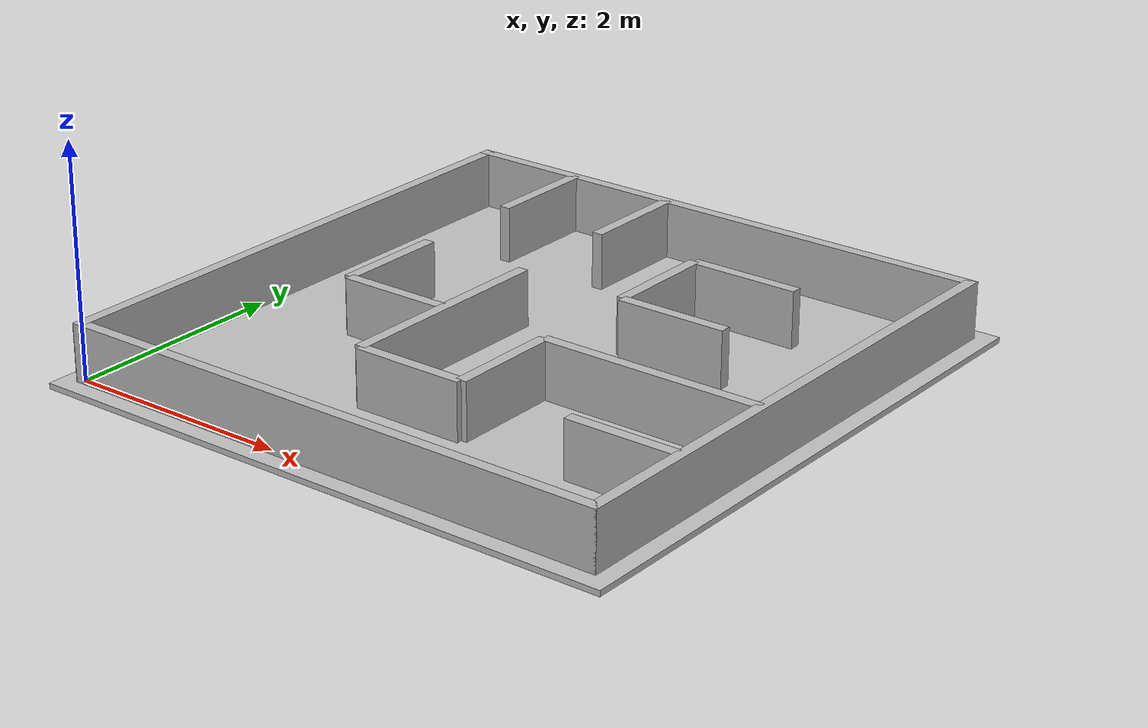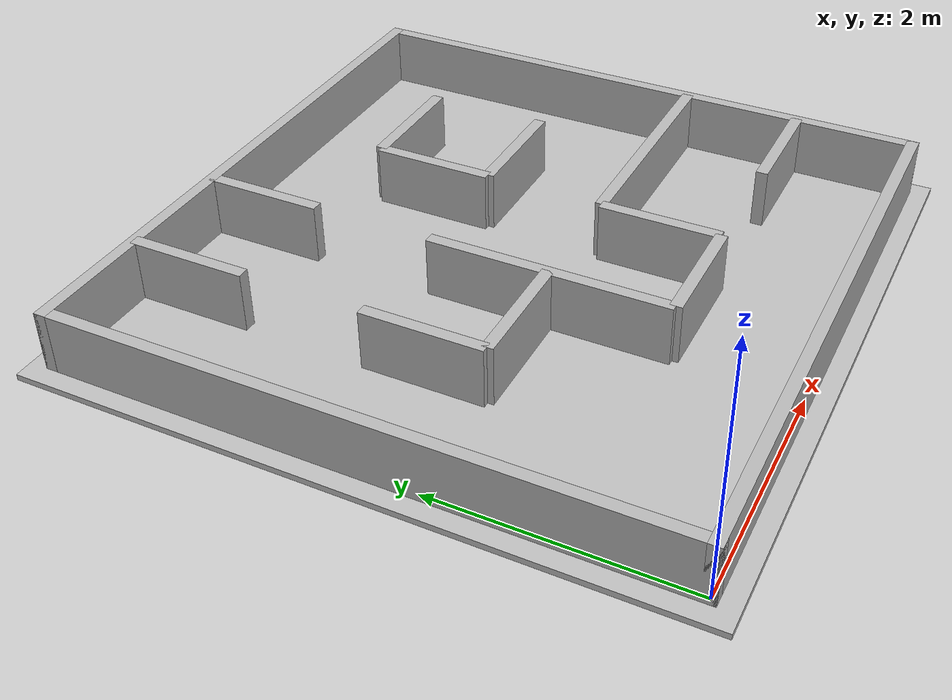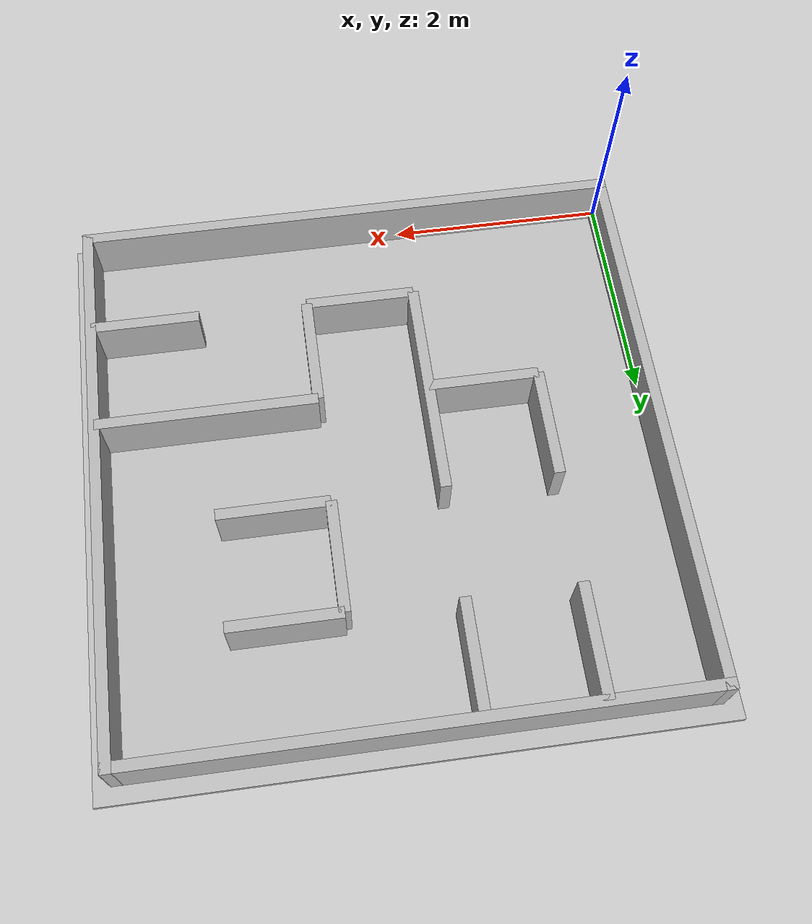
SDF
<?xml version="1.0" ?>
<sdf version="1.6">

  <world name="maze2_world">

    <!-- ================= PHYSICS ================= -->

    <physics name="default_physics" type="ode">
      <max_step_size>0.001</max_step_size>
      <real_time_factor>1.0</real_time_factor>
      <real_time_update_rate>1000</real_time_update_rate>
      <ode>
        <solver>
          <type>quick</type>
          <iters>150</iters>
          <sor>1.3</sor>
        </solver>
        <constraints>
          <cfm>0.0</cfm>
          <erp>0.2</erp>
          <contact_max_correcting_vel>100</contact_max_correcting_vel>
          <contact_surface_layer>0.001</contact_surface_layer>
        </constraints>
      </ode>
    </physics>

    <!-- ================= ROS STATE PLUGIN ================= -->

    <plugin name="gazebo_ros_state" filename="libgazebo_ros_state.so">
      <ros>
        <namespace>/</namespace>
      </ros>
      <update_rate>1.0</update_rate>
    </plugin>

    <!-- ================= DEFAULT VIEW ================= -->

    <gui>
      <camera name="user_camera">
        <pose>2.5 2.5 8.0 0 1.5708 0</pose>
      </camera>
    </gui>

    <!-- ================= LIGHT ================= -->

    <include>
      <uri>model://sun</uri>
    </include>

    <!-- ================= FLOOR ================= -->

    <model name="ground">

      <static>true</static>

      <link name="ground_link">

        <collision name="ground_collision">
          <geometry>
            <box>
              <size>5.4 5.4 0.05</size>
            </box>
          </geometry>
        </collision>

        <visual name="ground_visual">
          <geometry>
            <box>
              <size>5.4 5.4 0.05</size>
            </box>
          </geometry>

          <material>
            <ambient>0.75 0.75 0.75 1</ambient>
            <diffuse>0.75 0.75 0.75 1</diffuse>
          </material>
        </visual>

        <pose>2.5 2.5 -0.025 0 0 0</pose>

      </link>

    </model>

    <!-- OUTER WALLS                                       -->

    <!-- TOP -->

    <model name="top_wall">
      <static>true</static>

      <link name="link">

        <collision name="collision">
          <geometry>
            <box>
              <size>5.1 0.10 0.50</size>
            </box>
          </geometry>
        </collision>

        <visual name="visual">
          <geometry>
            <box>
              <size>5.1 0.10 0.50</size>
            </box>
          </geometry>
        </visual>

      </link>

      <pose>2.5 5.0 0.25 0 0 0</pose>

    </model>

    <!-- BOTTOM -->

    <model name="bottom_wall">
      <static>true</static>

      <link name="link">

        <collision name="collision">
          <geometry>
            <box>
              <size>5.1 0.10 0.50</size>
            </box>
          </geometry>
        </collision>

        <visual name="visual">
          <geometry>
            <box>
              <size>5.1 0.10 0.50</size>
            </box>
          </geometry>
        </visual>

      </link>

      <pose>2.5 0.0 0.25 0 0 0</pose>

    </model>

    <!-- LEFT -->

    <model name="left_wall">
      <static>true</static>

      <link name="link">

        <collision name="collision">
          <geometry>
            <box>
              <size>0.10 5.1 0.50</size>
            </box>
          </geometry>
        </collision>

        <visual name="visual">
          <geometry>
            <box>
              <size>0.10 5.1 0.50</size>
            </box>
          </geometry>
        </visual>

      </link>

      <pose>0.0 2.5 0.25 0 0 0</pose>

    </model>

    <!-- RIGHT -->

    <model name="right_wall">
      <static>true</static>

      <link name="link">

        <collision name="collision">
          <geometry>
            <box>
              <size>0.10 5.1 0.50</size>
            </box>
          </geometry>
        </collision>

        <visual name="visual">
          <geometry>
            <box>
              <size>0.10 5.1 0.50</size>
            </box>
          </geometry>
        </visual>

      </link>

      <pose>5.0 2.5 0.25 0 0 0</pose>

    </model>

    <!-- INNER WALL 1  -- blocks (0,2)-(1,2)                -->

    <model name="wall_col1_r2">
      <static>true</static>

      <link name="link">

        <collision name="collision">
          <geometry>
            <box>
              <size>0.10 1.0 0.50</size>
            </box>
          </geometry>
        </collision>

        <visual name="visual">
          <geometry>
            <box>
              <size>0.10 1.0 0.50</size>
            </box>
          </geometry>
        </visual>

      </link>

      <pose>1.0 2.5 0.25 0 0 0</pose>

    </model>

    <!-- INNER WALL 2  -- blocks (0,4)-(1,4)                -->

    <model name="wall_col1_r4">
      <static>true</static>

      <link name="link">

        <collision name="collision">
          <geometry>
            <box>
              <size>0.10 1.0 0.50</size>
            </box>
          </geometry>
        </collision>

        <visual name="visual">
          <geometry>
            <box>
              <size>0.10 1.0 0.50</size>
            </box>
          </geometry>
        </visual>

      </link>

      <pose>1.0 4.5 0.25 0 0 0</pose>

    </model>

    <!-- INNER WALL 3  -- blocks (1,1)-(1,2)                -->

    <model name="wall_row2_c1">
      <static>true</static>

      <link name="link">

        <collision name="collision">
          <geometry>
            <box>
              <size>1.0 0.10 0.50</size>
            </box>
          </geometry>
        </collision>

        <visual name="visual">
          <geometry>
            <box>
              <size>1.0 0.10 0.50</size>
            </box>
          </geometry>
        </visual>

      </link>

      <pose>1.5 2.0 0.25 0 0 0</pose>

    </model>

    <!-- INNER WALL 4  -- blocks (1,1)-(2,1) and (1,2)-(2,2) -->

    <model name="wall_col2_r1r2">
      <static>true</static>

      <link name="link">

        <collision name="collision">
          <geometry>
            <box>
              <size>0.10 2.0 0.50</size>
            </box>
          </geometry>
        </collision>

        <visual name="visual">
          <geometry>
            <box>
              <size>0.10 2.0 0.50</size>
            </box>
          </geometry>
        </visual>

      </link>

      <pose>2.0 2.0 0.25 0 0 0</pose>

    </model>

    <!-- INNER WALL 5  -- blocks (1,4)-(2,4)                -->

    <model name="wall_col2_r4">
      <static>true</static>

      <link name="link">

        <collision name="collision">
          <geometry>
            <box>
              <size>0.10 1.0 0.50</size>
            </box>
          </geometry>
        </collision>

        <visual name="visual">
          <geometry>
            <box>
              <size>0.10 1.0 0.50</size>
            </box>
          </geometry>
        </visual>

      </link>

      <pose>2.0 4.5 0.25 0 0 0</pose>

    </model>

    <!-- INNER WALL 6  -- blocks (2,0)-(2,1)                -->

    <model name="wall_row1_c2">
      <static>true</static>

      <link name="link">

        <collision name="collision">
          <geometry>
            <box>
              <size>1.0 0.10 0.50</size>
            </box>
          </geometry>
        </collision>

        <visual name="visual">
          <geometry>
            <box>
              <size>1.0 0.10 0.50</size>
            </box>
          </geometry>
        </visual>

      </link>

      <pose>2.5 1.0 0.25 0 0 0</pose>

    </model>

    <!-- INNER WALL 7  -- blocks (2,1)-(3,1)                -->

    <model name="wall_col3_r1">
      <static>true</static>

      <link name="link">

        <collision name="collision">
          <geometry>
            <box>
              <size>0.10 1.0 0.50</size>
            </box>
          </geometry>
        </collision>

        <visual name="visual">
          <geometry>
            <box>
              <size>0.10 1.0 0.50</size>
            </box>
          </geometry>
        </visual>

      </link>

      <pose>3.0 1.5 0.25 0 0 0</pose>

    </model>

    <!-- INNER WALL 8  -- blocks (2,3)-(3,3)                -->

    <model name="wall_col3_r3">
      <static>true</static>

      <link name="link">

        <collision name="collision">
          <geometry>
            <box>
              <size>0.10 1.0 0.50</size>
            </box>
          </geometry>
        </collision>

        <visual name="visual">
          <geometry>
            <box>
              <size>0.10 1.0 0.50</size>
            </box>
          </geometry>
        </visual>

      </link>

      <pose>3.0 3.5 0.25 0 0 0</pose>

    </model>

    <!-- INNER WALL 9  -- blocks (3,1)-(3,2) and (4,1)-(4,2) -->

    <model name="wall_row2_c3c4">
      <static>true</static>

      <link name="link">

        <collision name="collision">
          <geometry>
            <box>
              <size>2.0 0.10 0.50</size>
            </box>
          </geometry>
        </collision>

        <visual name="visual">
          <geometry>
            <box>
              <size>2.0 0.10 0.50</size>
            </box>
          </geometry>
        </visual>

      </link>

      <pose>4.0 2.0 0.25 0 0 0</pose>

    </model>

    <!-- INNER WALL 10 -- blocks (3,2)-(3,3)                -->

    <model name="wall_row3_c3">
      <static>true</static>

      <link name="link">

        <collision name="collision">
          <geometry>
            <box>
              <size>1.0 0.10 0.50</size>
            </box>
          </geometry>
        </collision>

        <visual name="visual">
          <geometry>
            <box>
              <size>1.0 0.10 0.50</size>
            </box>
          </geometry>
        </visual>

      </link>

      <pose>3.5 3.0 0.25 0 0 0</pose>

    </model>

    <!-- INNER WALL 11 -- blocks (3,3)-(3,4)                -->

    <model name="wall_row4_c3">
      <static>true</static>

      <link name="link">

        <collision name="collision">
          <geometry>
            <box>
              <size>1.0 0.10 0.50</size>
            </box>
          </geometry>
        </collision>

        <visual name="visual">
          <geometry>
            <box>
              <size>1.0 0.10 0.50</size>
            </box>
          </geometry>
        </visual>

      </link>

      <pose>3.5 4.0 0.25 0 0 0</pose>

    </model>

    <!-- INNER WALL 12 -- blocks (4,0)-(4,1)                -->

    <model name="wall_row1_c4">
      <static>true</static>

      <link name="link">

        <collision name="collision">
          <geometry>
            <box>
              <size>1.0 0.10 0.50</size>
            </box>
          </geometry>
        </collision>

        <visual name="visual">
          <geometry>
            <box>
              <size>1.0 0.10 0.50</size>
            </box>
          </geometry>
        </visual>

      </link>

      <pose>4.5 1.0 0.25 0 0 0</pose>

    </model>

  </world>

</sdf>
